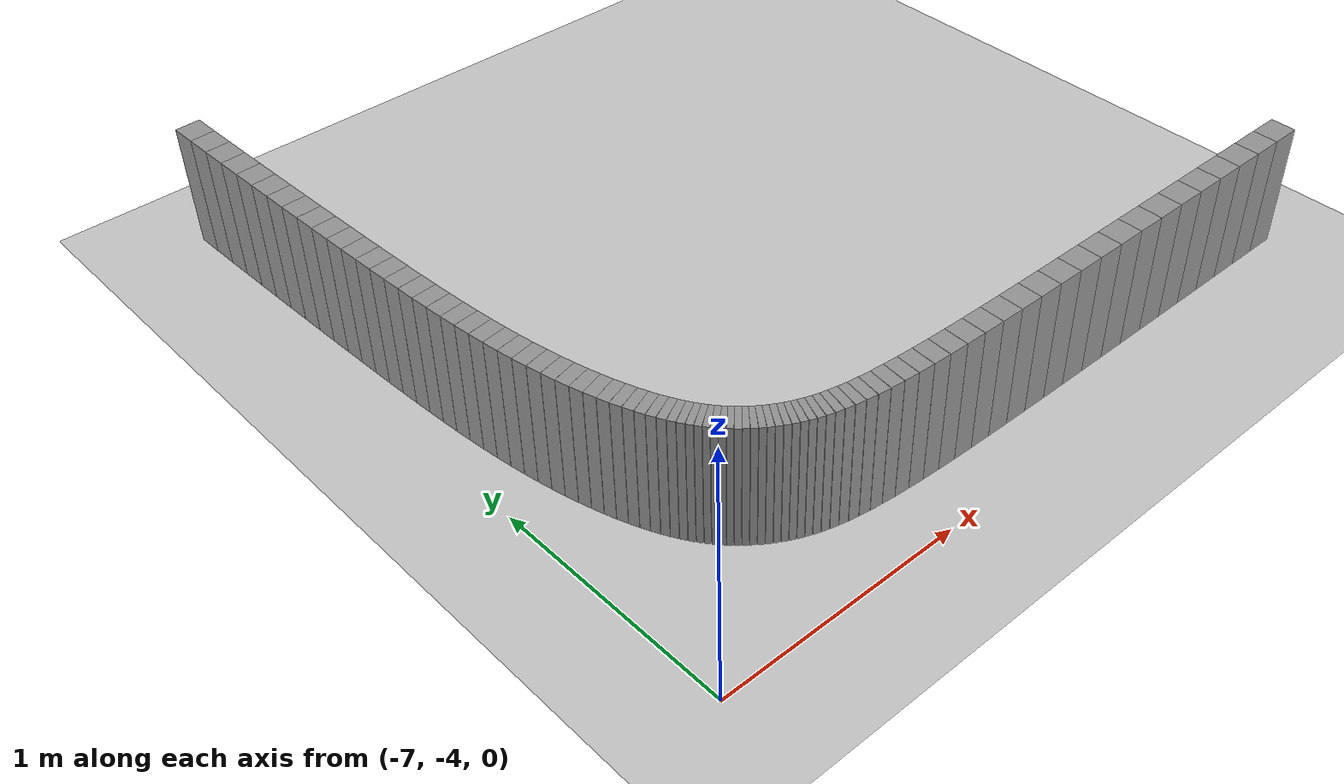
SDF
<sdf version="1.6">
 <world name="default">
  <include><uri>model://ground_plane</uri></include>
  <include><uri>model://sun</uri></include>
  <model name="wall_257_inward">
   <static>true</static>
   <link name="link">
    <collision name="collision">
     <geometry><box><size>0.11985096419137611 0.1 0.5</size></box></geometry>
    </collision>
    <visual name="visual">
     <geometry><box><size>0.11985096419137611 0.1 0.5</size></box></geometry>
     <material>
      <script><uri>file://media/materials/scripts/gazebo.material</uri><name>Gazebo/Gray</name></script>
     </material>
    </visual>
   </link>
   <pose>-3.975832521373053 -3.7499948990752277 0.25 0 0 3.141561475464234</pose>
  </model>
  <model name="wall_258_inward">
   <static>true</static>
   <link name="link">
    <collision name="collision">
     <geometry><box><size>0.1192337507428321 0.1 0.5</size></box></geometry>
    </collision>
    <visual name="visual">
     <geometry><box><size>0.1192337507428321 0.1 0.5</size></box></geometry>
     <material>
      <script><uri>file://media/materials/scripts/gazebo.material</uri><name>Gazebo/Gray</name></script>
     </material>
    </visual>
   </link>
   <pose>-4.095374878715621 -3.749989657864042 0.25 0 0 3.1415360782164345</pose>
  </model>
  <model name="wall_259_inward">
   <static>true</static>
   <link name="link">
    <collision name="collision">
     <geometry><box><size>0.11870285826603268 0.1 0.5</size></box></geometry>
    </collision>
    <visual name="visual">
     <geometry><box><size>0.11870285826603268 0.1 0.5</size></box></geometry>
     <material>
      <script><uri>file://media/materials/scripts/gazebo.material</uri><name>Gazebo/Gray</name></script>
     </material>
    </visual>
   </link>
   <pose>-4.214343182840169 -3.749980473995045 0.25 0 0 3.1414947448770487</pose>
  </model>
  <model name="wall_260_inward">
   <static>true</static>
   <link name="link">
    <collision name="collision">
     <geometry><box><size>0.11817933233260165 0.1 0.5</size></box></geometry>
    </collision>
    <visual name="visual">
     <geometry><box><size>0.11817933233260165 0.1 0.5</size></box></geometry>
     <material>
      <script><uri>file://media/materials/scripts/gazebo.material</uri><name>Gazebo/Gray</name></script>
     </material>
    </visual>
   </link>
   <pose>-4.332784277100143 -3.749965217879076 0.25 0 0 3.141432810175456</pose>
  </model>
  <model name="wall_261_inward">
   <static>true</static>
   <link name="link">
    <collision name="collision">
     <geometry><box><size>0.11757315043329368 0.1 0.5</size></box></geometry>
    </collision>
    <visual name="visual">
     <geometry><box><size>0.11757315043329368 0.1 0.5</size></box></geometry>
     <material>
      <script><uri>file://media/materials/scripts/gazebo.material</uri><name>Gazebo/Gray</name></script>
     </material>
    </visual>
   </link>
   <pose>-4.450660515738427 -3.7499404774729017 0.25 0 0 3.1413324698260894</pose>
  </model>
  <model name="wall_262_inward">
   <static>true</static>
   <link name="link">
    <collision name="collision">
     <geometry><box><size>0.11678989925178221 0.1 0.5</size></box></geometry>
    </collision>
    <visual name="visual">
     <geometry><box><size>0.11678989925178221 0.1 0.5</size></box></geometry>
     <material>
      <script><uri>file://media/materials/scripts/gazebo.material</uri><name>Gazebo/Gray</name></script>
     </material>
    </visual>
   </link>
   <pose>-4.567842033478291 -3.7499007458681493 0.25 0 0 3.1411741877224597</pose>
  </model>
  <model name="wall_263_inward">
   <static>true</static>
   <link name="link">
    <collision name="collision">
     <geometry><box><size>0.11573714084706525 0.1 0.5</size></box></geometry>
    </collision>
    <visual name="visual">
     <geometry><box><size>0.11573714084706525 0.1 0.5</size></box></geometry>
     <material>
      <script><uri>file://media/materials/scripts/gazebo.material</uri><name>Gazebo/Gray</name></script>
     </material>
    </visual>
   </link>
   <pose>-4.684105536010743 -3.749838420074222 0.25 0 0 3.140937902594098</pose>
  </model>
  <model name="wall_264_inward">
   <static>true</static>
   <link name="link">
    <collision name="collision">
     <geometry><box><size>0.11433355742984244 0.1 0.5</size></box></geometry>
    </collision>
    <visual name="visual">
     <geometry><box><size>0.11433355742984244 0.1 0.5</size></box></geometry>
     <material>
      <script><uri>file://media/materials/scripts/gazebo.material</uri><name>Gazebo/Gray</name></script>
     </material>
    </visual>
   </link>
   <pose>-4.799140843504752 -3.7497427105722343 0.25 0 0 3.1405812268180058</pose>
  </model>
  <model name="wall_265_inward">
   <static>true</static>
   <link name="link">
    <collision name="collision">
     <geometry><box><size>0.11251301296791803 0.1 0.5</size></box></geometry>
    </collision>
    <visual name="visual">
     <geometry><box><size>0.11251301296791803 0.1 0.5</size></box></geometry>
     <material>
      <script><uri>file://media/materials/scripts/gazebo.material</uri><name>Gazebo/Gray</name></script>
     </material>
    </visual>
   </link>
   <pose>-4.912564033720715 -3.7495988853982043 0.25 0 0 3.140063848971151</pose>
  </model>
  <model name="wall_266_inward">
   <static>true</static>
   <link name="link">
    <collision name="collision">
     <geometry><box><size>0.11023141690203944 0.1 0.5</size></box></geometry>
    </collision>
    <visual name="visual">
     <geometry><box><size>0.11023141690203944 0.1 0.5</size></box></geometry>
     <material>
      <script><uri>file://media/materials/scripts/gazebo.material</uri><name>Gazebo/Gray</name></script>
     </material>
    </visual>
   </link>
   <pose>-5.023936039316732 -3.7493870676122416 0.25 0 0 3.1393099518823795</pose>
  </model>
  <model name="wall_267_inward">
   <static>true</static>
   <link name="link">
    <collision name="collision">
     <geometry><box><size>0.10746341661228778 0.1 0.5</size></box></geometry>
    </collision>
    <visual name="visual">
     <geometry><box><size>0.10746341661228778 0.1 0.5</size></box></geometry>
     <material>
      <script><uri>file://media/materials/scripts/gazebo.material</uri><name>Gazebo/Gray</name></script>
     </material>
    </visual>
   </link>
   <pose>-5.132783008885932 -3.7490806313715224 0.25 0 0 3.138231063681837</pose>
  </model>
  <model name="wall_268_inward">
   <static>true</static>
   <link name="link">
    <collision name="collision">
     <geometry><box><size>0.10421662167659766 0.1 0.5</size></box></geometry>
    </collision>
    <visual name="visual">
     <geometry><box><size>0.10421662167659766 0.1 0.5</size></box></geometry>
     <material>
      <script><uri>file://media/materials/scripts/gazebo.material</uri><name>Gazebo/Gray</name></script>
     </material>
    </visual>
   </link>
   <pose>-5.238622101673148 -3.7486452487490487 0.25 0 0 3.136703606044576</pose>
  </model>
  <model name="wall_269_inward">
   <static>true</static>
   <link name="link">
    <collision name="collision">
     <geometry><box><size>0.10050407942231163 0.1 0.5</size></box></geometry>
    </collision>
    <visual name="visual">
     <geometry><box><size>0.10050407942231163 0.1 0.5</size></box></geometry>
     <material>
      <script><uri>file://media/materials/scripts/gazebo.material</uri><name>Gazebo/Gray</name></script>
     </material>
    </visual>
   </link>
   <pose>-5.3409805952600085 -3.748038296194944 0.25 0 0 3.1345840536367113</pose>
  </model>
  <model name="wall_270_inward">
   <static>true</static>
   <link name="link">
    <collision name="collision">
     <geometry><box><size>0.09635972329131096 0.1 0.5</size></box></geometry>
    </collision>
    <visual name="visual">
     <geometry><box><size>0.09635972329131096 0.1 0.5</size></box></geometry>
     <material>
      <script><uri>file://media/materials/scripts/gazebo.material</uri><name>Gazebo/Gray</name></script>
     </material>
    </visual>
   </link>
   <pose>-5.439408888072236 -3.7472077870020266 0.25 0 0 3.1316647817739494</pose>
  </model>
  <model name="wall_271_inward">
   <static>true</static>
   <link name="link">
    <collision name="collision">
     <geometry><box><size>0.09183302656771014 0.1 0.5</size></box></geometry>
    </collision>
    <visual name="visual">
     <geometry><box><size>0.09183302656771014 0.1 0.5</size></box></geometry>
     <material>
      <script><uri>file://media/materials/scripts/gazebo.material</uri><name>Gazebo/Gray</name></script>
     </material>
    </visual>
   </link>
   <pose>-5.533498467453442 -3.7460922958120015 0.25 0 0 3.1277153801886217</pose>
  </model>
  <model name="wall_272_inward">
   <static>true</static>
   <link name="link">
    <collision name="collision">
     <geometry><box><size>0.08697319237249161 0.1 0.5</size></box></geometry>
    </collision>
    <visual name="visual">
     <geometry><box><size>0.08697319237249161 0.1 0.5</size></box></geometry>
     <material>
      <script><uri>file://media/materials/scripts/gazebo.material</uri><name>Gazebo/Gray</name></script>
     </material>
    </visual>
   </link>
   <pose>-5.6228891847798055 -3.7446225370279906 0.25 0 0 3.1224457399725645</pose>
  </model>
  <model name="wall_273_inward">
   <static>true</static>
   <link name="link">
    <collision name="collision">
     <geometry><box><size>0.08183619003548818 0.1 0.5</size></box></geometry>
    </collision>
    <visual name="visual">
     <geometry><box><size>0.08183619003548818 0.1 0.5</size></box></geometry>
     <material>
      <script><uri>file://media/materials/scripts/gazebo.material</uri><name>Gazebo/Gray</name></script>
     </material>
    </visual>
   </link>
   <pose>-5.707271999080447 -3.742723268546782 0.25 0 0 3.1155209093581404</pose>
  </model>
  <model name="wall_274_inward">
   <static>true</static>
   <link name="link">
    <collision name="collision">
     <geometry><box><size>0.07648250923630003 0.1 0.5</size></box></geometry>
    </collision>
    <visual name="visual">
     <geometry><box><size>0.07648250923630003 0.1 0.5</size></box></geometry>
     <material>
      <script><uri>file://media/materials/scripts/gazebo.material</uri><name>Gazebo/Gray</name></script>
     </material>
    </visual>
   </link>
   <pose>-5.786393986108401 -3.7403173771629104 0.25 0 0 3.106565559760116</pose>
  </model>
  <model name="wall_275_inward">
   <static>true</static>
   <link name="link">
    <collision name="collision">
     <geometry><box><size>0.07097752288774944 0.1 0.5</size></box></geometry>
    </collision>
    <visual name="visual">
     <geometry><box><size>0.07097752288774944 0.1 0.5</size></box></geometry>
     <material>
      <script><uri>file://media/materials/scripts/gazebo.material</uri><name>Gazebo/Gray</name></script>
     </material>
    </visual>
   </link>
   <pose>-5.860062311705724 -3.7373312709759237 0.25 0 0 3.095169738997599</pose>
  </model>
  <model name="wall_276_inward">
   <static>true</static>
   <link name="link">
    <collision name="collision">
     <geometry><box><size>0.0653900516977593 0.1 0.5</size></box></geometry>
    </collision>
    <visual name="visual">
     <geometry><box><size>0.0653900516977593 0.1 0.5</size></box></geometry>
     <material>
      <script><uri>file://media/materials/scripts/gazebo.material</uri><name>Gazebo/Gray</name></script>
     </material>
    </visual>
   </link>
   <pose>-5.928147722739459 -3.7337021750964796 0.25 0 0 3.0809286204245048</pose>
  </model>
  <model name="wall_277_inward">
   <static>true</static>
   <link name="link">
    <collision name="collision">
     <geometry><box><size>0.05979624184406644 0.1 0.5</size></box></geometry>
    </collision>
    <visual name="visual">
     <geometry><box><size>0.05979624184406644 0.1 0.5</size></box></geometry>
     <material>
      <script><uri>file://media/materials/scripts/gazebo.material</uri><name>Gazebo/Gray</name></script>
     </material>
    </visual>
   </link>
   <pose>-5.990589491067444 -3.7293860456914265 0.25 0 0 3.0634502666800087</pose>
  </model>
  <model name="wall_278_inward">
   <static>true</static>
   <link name="link">
    <collision name="collision">
     <geometry><box><size>0.054287492867526266 0.1 0.5</size></box></geometry>
    </collision>
    <visual name="visual">
     <geometry><box><size>0.054287492867526266 0.1 0.5</size></box></geometry>
     <material>
      <script><uri>file://media/materials/scripts/gazebo.material</uri><name>Gazebo/Gray</name></script>
     </material>
    </visual>
   </link>
   <pose>-6.0474066928933325 -3.7243640363724686 0.25 0 0 3.042398941319446</pose>
  </model>
  <model name="wall_279_inward">
   <static>true</static>
   <link name="link">
    <collision name="collision">
     <geometry><box><size>0.04897055171827991 0.1 0.5</size></box></geometry>
    </collision>
    <visual name="visual">
     <geometry><box><size>0.04897055171827991 0.1 0.5</size></box></geometry>
     <material>
      <script><uri>file://media/materials/scripts/gazebo.material</uri><name>Gazebo/Gray</name></script>
     </material>
    </visual>
   </link>
   <pose>-6.098714174403398 -3.718646682497511 0.25 0 0 3.017556490803941</pose>
  </model>
  <model name="wall_280_inward">
   <static>true</static>
   <link name="link">
    <collision name="collision">
     <geometry><box><size>0.043958492335045264 0.1 0.5</size></box></geometry>
    </collision>
    <visual name="visual">
     <geometry><box><size>0.043958492335045264 0.1 0.5</size></box></geometry>
     <material>
      <script><uri>file://media/materials/scripts/gazebo.material</uri><name>Gazebo/Gray</name></script>
     </material>
    </visual>
   </link>
   <pose>-6.144734699092504 -3.712273321710067 0.25 0 0 2.9888521629420137</pose>
  </model>
  <model name="wall_281_inward">
   <static>true</static>
   <link name="link">
    <collision name="collision">
     <geometry><box><size>0.03936833173654973 0.1 0.5</size></box></geometry>
    </collision>
    <visual name="visual">
     <geometry><box><size>0.03936833173654973 0.1 0.5</size></box></geometry>
     <material>
      <script><uri>file://media/materials/scripts/gazebo.material</uri><name>Gazebo/Gray</name></script>
     </material>
    </visual>
   </link>
   <pose>-6.185805646213538 -3.7053047029852673 0.25 0 0 2.9564013153614255</pose>
  </model>
  <model name="wall_282_inward">
   <static>true</static>
   <link name="link">
    <collision name="collision">
     <geometry><box><size>0.03531460168848373 0.1 0.5</size></box></geometry>
    </collision>
    <visual name="visual">
     <geometry><box><size>0.03531460168848373 0.1 0.5</size></box></geometry>
     <material>
      <script><uri>file://media/materials/scripts/gazebo.material</uri><name>Gazebo/Gray</name></script>
     </material>
    </visual>
   </link>
   <pose>-6.222380835838898 -3.697808477075342 0.25 0 0 2.920527993841649</pose>
  </model>
  <model name="wall_283_inward">
   <static>true</static>
   <link name="link">
    <collision name="collision">
     <geometry><box><size>0.03188550989948741 0.1 0.5</size></box></geometry>
    </collision>
    <visual name="visual">
     <geometry><box><size>0.03188550989948741 0.1 0.5</size></box></geometry>
     <material>
      <script><uri>file://media/materials/scripts/gazebo.material</uri><name>Gazebo/Gray</name></script>
     </material>
    </visual>
   </link>
   <pose>-6.255016058857926 -3.6898408541311056 0.25 0 0 2.8817639448512384</pose>
  </model>
  <model name="wall_284_inward">
   <static>true</static>
   <link name="link">
    <collision name="collision">
     <geometry><box><size>0.029129023338947773 0.1 0.5</size></box></geometry>
    </collision>
    <visual name="visual">
     <geometry><box><size>0.029129023338947773 0.1 0.5</size></box></geometry>
     <material>
      <script><uri>file://media/materials/scripts/gazebo.material</uri><name>Gazebo/Gray</name></script>
     </material>
    </visual>
   </link>
   <pose>-6.284334256169412 -3.6814297326100207 0.25 0 0 2.840796170122841</pose>
  </model>
  <model name="wall_285_inward">
   <static>true</static>
   <link name="link">
    <collision name="collision">
     <geometry><box><size>0.027037952706920405 0.1 0.5</size></box></geometry>
    </collision>
    <visual name="visual">
     <geometry><box><size>0.027037952706920405 0.1 0.5</size></box></geometry>
     <material>
      <script><uri>file://media/materials/scripts/gazebo.material</uri><name>Gazebo/Gray</name></script>
     </material>
    </visual>
   </link>
   <pose>-6.3109754548729935 -3.6725654794993154 0.25 0 0 2.798400548719962</pose>
  </model>
  <model name="wall_286_inward">
   <static>true</static>
   <link name="link">
    <collision name="collision">
     <geometry><box><size>0.02556457982811214 0.1 0.5</size></box></geometry>
    </collision>
    <visual name="visual">
     <geometry><box><size>0.02556457982811214 0.1 0.5</size></box></geometry>
     <material>
      <script><uri>file://media/materials/scripts/gazebo.material</uri><name>Gazebo/Gray</name></script>
     </material>
    </visual>
   </link>
   <pose>-6.335546593118629 -3.663200907942003 0.25 0 0 2.7553260506692454</pose>
  </model>
  <model name="wall_287_inward">
   <static>true</static>
   <link name="link">
    <collision name="collision">
     <geometry><box><size>0.02460469299314515 0.1 0.5</size></box></geometry>
    </collision>
    <visual name="visual">
     <geometry><box><size>0.02460469299314515 0.1 0.5</size></box></geometry>
     <material>
      <script><uri>file://media/materials/scripts/gazebo.material</uri><name>Gazebo/Gray</name></script>
     </material>
    </visual>
   </link>
   <pose>-6.358573077658383 -3.653264673928919 0.25 0 0 2.7122866600093416</pose>
  </model>
  <model name="wall_288_inward">
   <static>true</static>
   <link name="link">
    <collision name="collision">
     <geometry><box><size>0.02402310544051826 0.1 0.5</size></box></geometry>
    </collision>
    <visual name="visual">
     <geometry><box><size>0.02402310544051826 0.1 0.5</size></box></geometry>
     <material>
      <script><uri>file://media/materials/scripts/gazebo.material</uri><name>Gazebo/Gray</name></script>
     </material>
    </visual>
   </link>
   <pose>-6.380458158557799 -3.6426844244108842 0.25 0 0 2.669756456819574</pose>
  </model>
  <model name="wall_289_inward">
   <static>true</static>
   <link name="link">
    <collision name="collision">
     <geometry><box><size>0.02368589950599631 0.1 0.5</size></box></geometry>
    </collision>
    <visual name="visual">
     <geometry><box><size>0.02368589950599631 0.1 0.5</size></box></geometry>
     <material>
      <script><uri>file://media/materials/scripts/gazebo.material</uri><name>Gazebo/Gray</name></script>
     </material>
    </visual>
   </link>
   <pose>-6.401472625670959 -3.6314069192470066 0.25 0 0 2.6280554144560533</pose>
  </model>
  <model name="wall_290_inward">
   <static>true</static>
   <link name="link">
    <collision name="collision">
     <geometry><box><size>0.023469801988124563 0.1 0.5</size></box></geometry>
    </collision>
    <visual name="visual">
     <geometry><box><size>0.023469801988124563 0.1 0.5</size></box></geometry>
     <material>
      <script><uri>file://media/materials/scripts/gazebo.material</uri><name>Gazebo/Gray</name></script>
     </material>
    </visual>
   </link>
   <pose>-6.421765663654026 -3.6194120658560074 0.25 0 0 2.5872699937243673</pose>
  </model>
  <model name="wall_291_inward">
   <static>true</static>
   <link name="link">
    <collision name="collision">
     <geometry><box><size>0.023272072233249043 0.1 0.5</size></box></geometry>
    </collision>
    <visual name="visual">
     <geometry><box><size>0.023272072233249043 0.1 0.5</size></box></geometry>
     <material>
      <script><uri>file://media/materials/scripts/gazebo.material</uri><name>Gazebo/Gray</name></script>
     </material>
    </visual>
   </link>
   <pose>-6.4413846147538 -3.606720343118595 0.25 0 0 2.5473446092276646</pose>
  </model>
  <model name="wall_292_inward">
   <static>true</static>
   <link name="link">
    <collision name="collision">
     <geometry><box><size>0.02303499157915833 0.1 0.5</size></box></geometry>
    </collision>
    <visual name="visual">
     <geometry><box><size>0.02303499157915833 0.1 0.5</size></box></geometry>
     <material>
      <script><uri>file://media/materials/scripts/gazebo.material</uri><name>Gazebo/Gray</name></script>
     </material>
    </visual>
   </link>
   <pose>-6.46030816331419 -3.593386989184484 0.25 0 0 2.5080389439965645</pose>
  </model>
  <model name="wall_293_inward">
   <static>true</static>
   <link name="link">
    <collision name="collision">
     <geometry><box><size>0.02274415354014015 0.1 0.5</size></box></geometry>
    </collision>
    <visual name="visual">
     <geometry><box><size>0.02274415354014015 0.1 0.5</size></box></geometry>
     <material>
      <script><uri>file://media/materials/scripts/gazebo.material</uri><name>Gazebo/Gray</name></script>
     </material>
    </visual>
   </link>
   <pose>-6.478486595954779 -3.5794845183091137 0.25 0 0 2.469114386438585</pose>
  </model>
  <model name="wall_294_inward">
   <static>true</static>
   <link name="link">
    <collision name="collision">
     <geometry><box><size>0.02240563150620921 0.1 0.5</size></box></geometry>
    </collision>
    <visual name="visual">
     <geometry><box><size>0.02240563150620921 0.1 0.5</size></box></geometry>
     <material>
      <script><uri>file://media/materials/scripts/gazebo.material</uri><name>Gazebo/Gray</name></script>
     </material>
    </visual>
   </link>
   <pose>-6.495868863713278 -3.565086937791947 0.25 0 0 2.4302691521389246</pose>
  </model>
  <model name="wall_295_inward">
   <static>true</static>
   <link name="link">
    <collision name="collision">
     <geometry><box><size>0.022070769463099146 0.1 0.5</size></box></geometry>
    </collision>
    <visual name="visual">
     <geometry><box><size>0.022070769463099146 0.1 0.5</size></box></geometry>
     <material>
      <script><uri>file://media/materials/scripts/gazebo.material</uri><name>Gazebo/Gray</name></script>
     </material>
    </visual>
   </link>
   <pose>-6.512426898283839 -3.5502484442728397 0.25 0 0 2.3912537385576567</pose>
  </model>
  <model name="wall_296_inward">
   <static>true</static>
   <link name="link">
    <collision name="collision">
     <geometry><box><size>0.02181500069988589 0.1 0.5</size></box></geometry>
    </collision>
    <visual name="visual">
     <geometry><box><size>0.02181500069988589 0.1 0.5</size></box></geometry>
     <material>
      <script><uri>file://media/materials/scripts/gazebo.material</uri><name>Gazebo/Gray</name></script>
     </material>
    </visual>
   </link>
   <pose>-6.528178368225654 -3.5349777212925866 0.25 0 0 2.3518971033459226</pose>
  </model>
  <model name="wall_297_inward">
   <static>true</static>
   <link name="link">
    <collision name="collision">
     <geometry><box><size>0.02174351973835134 0.1 0.5</size></box></geometry>
    </collision>
    <visual name="visual">
     <geometry><box><size>0.02174351973835134 0.1 0.5</size></box></geometry>
     <material>
      <script><uri>file://media/materials/scripts/gazebo.material</uri><name>Gazebo/Gray</name></script>
     </material>
    </visual>
   </link>
   <pose>-6.54319951762276 -3.519213395230791 0.25 0 0 2.3121550327969373</pose>
  </model>
  <model name="wall_298_inward">
   <static>true</static>
   <link name="link">
    <collision name="collision">
     <geometry><box><size>0.021926463865557348 0.1 0.5</size></box></geometry>
    </collision>
    <visual name="visual">
     <geometry><box><size>0.021926463865557348 0.1 0.5</size></box></geometry>
     <material>
      <script><uri>file://media/materials/scripts/gazebo.material</uri><name>Gazebo/Gray</name></script>
     </material>
    </visual>
   </link>
   <pose>-6.557615254860033 -3.50281940974062 0.25 0 0 2.2721604176950017</pose>
  </model>
  <model name="wall_299_inward">
   <static>true</static>
   <link name="link">
    <collision name="collision">
     <geometry><box><size>0.022455914085575727 0.1 0.5</size></box></geometry>
    </collision>
    <visual name="visual">
     <geometry><box><size>0.022455914085575727 0.1 0.5</size></box></geometry>
     <material>
      <script><uri>file://media/materials/scripts/gazebo.material</uri><name>Gazebo/Gray</name></script>
     </material>
    </visual>
   </link>
   <pose>-6.57158447096393 -3.4855824796750747 0.25 0 0 2.232040105215239</pose>
  </model>
  <model name="wall_300_inward">
   <static>true</static>
   <link name="link">
    <collision name="collision">
     <geometry><box><size>0.023399560340396443 0.1 0.5</size></box></geometry>
    </collision>
    <visual name="visual">
     <geometry><box><size>0.023399560340396443 0.1 0.5</size></box></geometry>
     <material>
      <script><uri>file://media/materials/scripts/gazebo.material</uri><name>Gazebo/Gray</name></script>
     </material>
    </visual>
   </link>
   <pose>-6.585290871125759 -3.467208388458634 0.25 0 0 2.192197949727474</pose>
  </model>
  <model name="wall_301_inward">
   <static>true</static>
   <link name="link">
    <collision name="collision">
     <geometry><box><size>0.024752969674902144 0.1 0.5</size></box></geometry>
    </collision>
    <visual name="visual">
     <geometry><box><size>0.024752969674902144 0.1 0.5</size></box></geometry>
     <material>
      <script><uri>file://media/materials/scripts/gazebo.material</uri><name>Gazebo/Gray</name></script>
     </material>
    </visual>
   </link>
   <pose>-6.598907016151414 -3.447357846117823 0.25 0 0 2.1529433735769774</pose>
  </model>
  <model name="wall_302_inward">
   <static>true</static>
   <link name="link">
    <collision name="collision">
     <geometry><box><size>0.02651538896938302 0.1 0.5</size></box></geometry>
    </collision>
    <visual name="visual">
     <geometry><box><size>0.02651538896938302 0.1 0.5</size></box></geometry>
     <material>
      <script><uri>file://media/materials/scripts/gazebo.material</uri><name>Gazebo/Gray</name></script>
     </material>
    </visual>
   </link>
   <pose>-6.612571577272867 -3.4256749030714424 0.25 0 0 2.114624559244304</pose>
  </model>
  <model name="wall_303_inward">
   <static>true</static>
   <link name="link">
    <collision name="collision">
     <geometry><box><size>0.02865211571768054 0.1 0.5</size></box></geometry>
    </collision>
    <visual name="visual">
     <geometry><box><size>0.02865211571768054 0.1 0.5</size></box></geometry>
     <material>
      <script><uri>file://media/materials/scripts/gazebo.material</uri><name>Gazebo/Gray</name></script>
     </material>
    </visual>
   </link>
   <pose>-6.626384244524119 -3.401804158050286 0.25 0 0 2.0775418357616715</pose>
  </model>
  <model name="wall_304_inward">
   <static>true</static>
   <link name="link">
    <collision name="collision">
     <geometry><box><size>0.031099895316811586 0.1 0.5</size></box></geometry>
    </collision>
    <visual name="visual">
     <geometry><box><size>0.031099895316811586 0.1 0.5</size></box></geometry>
     <material>
      <script><uri>file://media/materials/scripts/gazebo.material</uri><name>Gazebo/Gray</name></script>
     </material>
    </visual>
   </link>
   <pose>-6.640395451576756 -3.375422734005471 0.25 0 0 2.041945071608974</pose>
  </model>
  <model name="wall_305_inward">
   <static>true</static>
   <link name="link">
    <collision name="collision">
     <geometry><box><size>0.03377151724089265 0.1 0.5</size></box></geometry>
    </collision>
    <visual name="visual">
     <geometry><box><size>0.03377151724089265 0.1 0.5</size></box></geometry>
     <material>
      <script><uri>file://media/materials/scripts/gazebo.material</uri><name>Gazebo/Gray</name></script>
     </material>
    </visual>
   </link>
   <pose>-6.654602738346004 -3.346269262983576 0.25 0 0 2.007963726076283</pose>
  </model>
  <model name="wall_306_inward">
   <static>true</static>
   <link name="link">
    <collision name="collision">
     <geometry><box><size>0.03659138478162874 0.1 0.5</size></box></geometry>
    </collision>
    <visual name="visual">
     <geometry><box><size>0.03659138478162874 0.1 0.5</size></box></geometry>
     <material>
      <script><uri>file://media/materials/scripts/gazebo.material</uri><name>Gazebo/Gray</name></script>
     </material>
    </visual>
   </link>
   <pose>-6.668957662719433 -3.3141546630511303 0.25 0 0 1.9756221479035763</pose>
  </model>
  <model name="wall_307_inward">
   <static>true</static>
   <link name="link">
    <collision name="collision">
     <geometry><box><size>0.03949013153308784 0.1 0.5</size></box></geometry>
    </collision>
    <visual name="visual">
     <geometry><box><size>0.03949013153308784 0.1 0.5</size></box></geometry>
     <material>
      <script><uri>file://media/materials/scripts/gazebo.material</uri><name>Gazebo/Gray</name></script>
     </material>
    </visual>
   </link>
   <pose>-6.68337919385246 -3.2789583877615884 0.25 0 0 1.9449005447618868</pose>
  </model>
  <model name="wall_308_inward">
   <static>true</static>
   <link name="link">
    <collision name="collision">
     <geometry><box><size>0.042397547751598465 0.1 0.5</size></box></geometry>
    </collision>
    <visual name="visual">
     <geometry><box><size>0.042397547751598465 0.1 0.5</size></box></geometry>
     <material>
      <script><uri>file://media/materials/scripts/gazebo.material</uri><name>Gazebo/Gray</name></script>
     </material>
    </visual>
   </link>
   <pose>-6.697762970981934 -3.2406289085682762 0.25 0 0 1.9157365825863253</pose>
  </model>
  <model name="wall_309_inward">
   <static>true</static>
   <link name="link">
    <collision name="collision">
     <geometry><box><size>0.0452533950816235 0.1 0.5</size></box></geometry>
    </collision>
    <visual name="visual">
     <geometry><box><size>0.0452533950816235 0.1 0.5</size></box></geometry>
     <material>
      <script><uri>file://media/materials/scripts/gazebo.material</uri><name>Gazebo/Gray</name></script>
     </material>
    </visual>
   </link>
   <pose>-6.711989363651538 -3.1991811873479783 0.25 0 0 1.8880332443841017</pose>
  </model>
  <model name="wall_310_inward">
   <static>true</static>
   <link name="link">
    <collision name="collision">
     <geometry><box><size>0.048007356187770515 0.1 0.5</size></box></geometry>
    </collision>
    <visual name="visual">
     <geometry><box><size>0.048007356187770515 0.1 0.5</size></box></geometry>
     <material>
      <script><uri>file://media/materials/scripts/gazebo.material</uri><name>Gazebo/Gray</name></script>
     </material>
    </visual>
   </link>
   <pose>-6.725932125638998 -3.154688328098007 0.25 0 0 1.861693226019616</pose>
  </model>
  <model name="wall_311_inward">
   <static>true</static>
   <link name="link">
    <collision name="collision">
     <geometry><box><size>0.05062138962612358 0.1 0.5</size></box></geometry>
    </collision>
    <visual name="visual">
     <geometry><box><size>0.05062138962612358 0.1 0.5</size></box></geometry>
     <material>
      <script><uri>file://media/materials/scripts/gazebo.material</uri><name>Gazebo/Gray</name></script>
     </material>
    </visual>
   </link>
   <pose>-6.739465839262949 -3.1072714113689766 0.25 0 0 1.8366182804510596</pose>
  </model>
  <model name="wall_312_inward">
   <static>true</static>
   <link name="link">
    <collision name="collision">
     <geometry><box><size>0.053075590286640835 0.1 0.5</size></box></geometry>
    </collision>
    <visual name="visual">
     <geometry><box><size>0.053075590286640835 0.1 0.5</size></box></geometry>
     <material>
      <script><uri>file://media/materials/scripts/gazebo.material</uri><name>Gazebo/Gray</name></script>
     </material>
    </visual>
   </link>
   <pose>-6.752473511991987 -3.0570849214518727 0.25 0 0 1.812751541773242</pose>
  </model>
  <model name="wall_313_inward">
   <static>true</static>
   <link name="link">
    <collision name="collision">
     <geometry><box><size>0.05535239133935495 0.1 0.5</size></box></geometry>
    </collision>
    <visual name="visual">
     <geometry><box><size>0.05535239133935495 0.1 0.5</size></box></geometry>
     <material>
      <script><uri>file://media/materials/scripts/gazebo.material</uri><name>Gazebo/Gray</name></script>
     </material>
    </visual>
   </link>
   <pose>-6.764851888278203 -3.0043065693910305 0.25 0 0 1.790060307133186</pose>
  </model>
  <model name="wall_314_inward">
   <static>true</static>
   <link name="link">
    <collision name="collision">
     <geometry><box><size>0.057454523719254025 0.1 0.5</size></box></geometry>
    </collision>
    <visual name="visual">
     <geometry><box><size>0.057454523719254025 0.1 0.5</size></box></geometry>
     <material>
      <script><uri>file://media/materials/scripts/gazebo.material</uri><name>Gazebo/Gray</name></script>
     </material>
    </visual>
   </link>
   <pose>-6.776515410310582 -2.949125557991864 0.25 0 0 1.7685382886619614</pose>
  </model>
  <model name="wall_315_inward">
   <static>true</static>
   <link name="link">
    <collision name="collision">
     <geometry><box><size>0.059394721181059956 0.1 0.5</size></box></geometry>
    </collision>
    <visual name="visual">
     <geometry><box><size>0.059394721181059956 0.1 0.5</size></box></geometry>
     <material>
      <script><uri>file://media/materials/scripts/gazebo.material</uri><name>Gazebo/Gray</name></script>
     </material>
    </visual>
   </link>
   <pose>-6.787400663771618 -2.8917269881520404 0.25 0 0 1.7482269118776288</pose>
  </model>
  <model name="wall_316_inward">
   <static>true</static>
   <link name="link">
    <collision name="collision">
     <geometry><box><size>0.061194646355837205 0.1 0.5</size></box></geometry>
    </collision>
    <visual name="visual">
     <geometry><box><size>0.061194646355837205 0.1 0.5</size></box></geometry>
     <material>
      <script><uri>file://media/materials/scripts/gazebo.material</uri><name>Gazebo/Gray</name></script>
     </material>
    </visual>
   </link>
   <pose>-6.797468383009584 -2.832281546471566 0.25 0 0 1.7291873551029395</pose>
  </model>
  <model name="wall_317_inward">
   <static>true</static>
   <link name="link">
    <collision name="collision">
     <geometry><box><size>0.06288622508012294 0.1 0.5</size></box></geometry>
    </collision>
    <visual name="visual">
     <geometry><box><size>0.06288622508012294 0.1 0.5</size></box></geometry>
     <material>
      <script><uri>file://media/materials/scripts/gazebo.material</uri><name>Gazebo/Gray</name></script>
     </material>
    </visual>
   </link>
   <pose>-6.80670428620067 -2.7709348837335233 0.25 0 0 1.7115071398111161</pose>
  </model>
  <model name="wall_318_inward">
   <static>true</static>
   <link name="link">
    <collision name="collision">
     <geometry><box><size>0.06450292284774523 0.1 0.5</size></box></geometry>
    </collision>
    <visual name="visual">
     <geometry><box><size>0.06450292284774523 0.1 0.5</size></box></geometry>
     <material>
      <script><uri>file://media/materials/scripts/gazebo.material</uri><name>Gazebo/Gray</name></script>
     </material>
    </visual>
   </link>
   <pose>-6.815118538008816 -2.707800644777513 0.25 0 0 1.6952810033448211</pose>
  </model>
  <model name="wall_319_inward">
   <static>true</static>
   <link name="link">
    <collision name="collision">
     <geometry><box><size>0.06609359197453117 0.1 0.5</size></box></geometry>
    </collision>
    <visual name="visual">
     <geometry><box><size>0.06609359197453117 0.1 0.5</size></box></geometry>
     <material>
      <script><uri>file://media/materials/scripts/gazebo.material</uri><name>Gazebo/Gray</name></script>
     </material>
    </visual>
   </link>
   <pose>-6.8227442332247765 -2.642950961975595 0.25 0 0 1.6805960841219902</pose>
  </model>
  <model name="wall_320_inward">
   <static>true</static>
   <link name="link">
    <collision name="collision">
     <geometry><box><size>0.06770102063033241 0.1 0.5</size></box></geometry>
    </collision>
    <visual name="visual">
     <geometry><box><size>0.06770102063033241 0.1 0.5</size></box></geometry>
     <material>
      <script><uri>file://media/materials/scripts/gazebo.material</uri><name>Gazebo/Gray</name></script>
     </material>
    </visual>
   </link>
   <pose>-6.829635347403757 -2.576410962086942 0.25 0 0 1.6675445645124463</pose>
  </model>
  <model name="wall_321_inward">
   <static>true</static>
   <link name="link">
    <collision name="collision">
     <geometry><box><size>0.06936121319758351 0.1 0.5</size></box></geometry>
    </collision>
    <visual name="visual">
     <geometry><box><size>0.06936121319758351 0.1 0.5</size></box></geometry>
     <material>
      <script><uri>file://media/materials/scripts/gazebo.material</uri><name>Gazebo/Gray</name></script>
     </material>
    </visual>
   </link>
   <pose>-6.835862774142868 -2.508164485845719 0.25 0 0 1.6561798643656054</pose>
  </model>
  <model name="wall_322_inward">
   <static>true</static>
   <link name="link">
    <collision name="collision">
     <geometry><box><size>0.07110499654609802 0.1 0.5</size></box></geometry>
    </collision>
    <visual name="visual">
     <geometry><box><size>0.07110499654609802 0.1 0.5</size></box></geometry>
     <material>
      <script><uri>file://media/materials/scripts/gazebo.material</uri><name>Gazebo/Gray</name></script>
     </material>
    </visual>
   </link>
   <pose>-6.841509715771184 -2.4381595868894936 0.25 0 0 1.6465141259551472</pose>
  </model>
  <model name="wall_323_inward">
   <static>true</static>
   <link name="link">
    <collision name="collision">
     <geometry><box><size>0.07295204468787846 0.1 0.5</size></box></geometry>
    </collision>
    <visual name="visual">
     <geometry><box><size>0.07295204468787846 0.1 0.5</size></box></geometry>
     <material>
      <script><uri>file://media/materials/scripts/gazebo.material</uri><name>Gazebo/Gray</name></script>
     </material>
    </visual>
   </link>
   <pose>-6.846666730907 -2.3663164963197705 0.25 0 0 1.638498770362441</pose>
  </model>
  <model name="wall_324_inward">
   <static>true</static>
   <link name="link">
    <collision name="collision">
     <geometry><box><size>0.0749155948903677 0.1 0.5</size></box></geometry>
    </collision>
    <visual name="visual">
     <geometry><box><size>0.0749155948903677 0.1 0.5</size></box></geometry>
     <material>
      <script><uri>file://media/materials/scripts/gazebo.material</uri><name>Gazebo/Gray</name></script>
     </material>
    </visual>
   </link>
   <pose>-6.851426601073319 -2.2925364436688653 0.25 0 0 1.6320298670476208</pose>
  </model>
  <model name="wall_325_inward">
   <static>true</static>
   <link name="link">
    <collision name="collision">
     <geometry><box><size>0.07699960287317603 0.1 0.5</size></box></geometry>
    </collision>
    <visual name="visual">
     <geometry><box><size>0.07699960287317603 0.1 0.5</size></box></geometry>
     <material>
      <script><uri>file://media/materials/scripts/gazebo.material</uri><name>Gazebo/Gray</name></script>
     </material>
    </visual>
   </link>
   <pose>-6.8558795495784635 -2.216709727794337 0.25 0 0 1.6269484073475293</pose>
  </model>
  <model name="wall_326_inward">
   <static>true</static>
   <link name="link">
    <collision name="collision">
     <geometry><box><size>0.0791998307108364 0.1 0.5</size></box></geometry>
    </collision>
    <visual name="visual">
     <geometry><box><size>0.0791998307108364 0.1 0.5</size></box></geometry>
     <material>
      <script><uri>file://media/materials/scripts/gazebo.material</uri><name>Gazebo/Gray</name></script>
     </material>
    </visual>
   </link>
   <pose>-6.860108490709928 -2.138724738021353 0.25 0 0 1.6230483200318329</pose>
  </model>
  <model name="wall_327_inward">
   <static>true</static>
   <link name="link">
    <collision name="collision">
     <geometry><box><size>0.08150105344920765 0.1 0.5</size></box></geometry>
    </collision>
    <visual name="visual">
     <geometry><box><size>0.08150105344920765 0.1 0.5</size></box></geometry>
     <material>
      <script><uri>file://media/materials/scripts/gazebo.material</uri><name>Gazebo/Gray</name></script>
     </material>
    </visual>
   </link>
   <pose>-6.864184979791254 -2.0584778581258405 0.25 0 0 1.6200980160476326</pose>
  </model>
  <model name="wall_328_inward">
   <static>true</static>
   <link name="link">
    <collision name="collision">
     <geometry><box><size>0.08388764180895182 0.1 0.5</size></box></geometry>
    </collision>
    <visual name="visual">
     <geometry><box><size>0.08388764180895182 0.1 0.5</size></box></geometry>
     <material>
      <script><uri>file://media/materials/scripts/gazebo.material</uri><name>Gazebo/Gray</name></script>
     </material>
    </visual>
   </link>
   <pose>-6.8681660290979725 -1.9758794457798023 0.25 0 0 1.6178478674398722</pose>
  </model>
  <model name="wall_329_inward">
   <static>true</static>
   <link name="link">
    <collision name="collision">
     <geometry><box><size>0.08634035944026225 0.1 0.5</size></box></geometry>
    </collision>
    <visual name="visual">
     <geometry><box><size>0.08634035944026225 0.1 0.5</size></box></geometry>
     <material>
      <script><uri>file://media/materials/scripts/gazebo.material</uri><name>Gazebo/Gray</name></script>
     </material>
    </visual>
   </link>
   <pose>-6.872092788910357 -1.8908561080398738 0.25 0 0 1.6160737453523977</pose>
  </model>
  <model name="wall_330_inward">
   <static>true</static>
   <link name="link">
    <collision name="collision">
     <geometry><box><size>0.08882835684959303 0.1 0.5</size></box></geometry>
    </collision>
    <visual name="visual">
     <geometry><box><size>0.08882835684959303 0.1 0.5</size></box></geometry>
     <material>
      <script><uri>file://media/materials/scripts/gazebo.material</uri><name>Gazebo/Gray</name></script>
     </material>
    </visual>
   </link>
   <pose>-6.875990597519634 -1.803358550463587 0.25 0 0 1.6145765623747552</pose>
  </model>
  <model name="wall_331_inward">
   <static>true</static>
   <link name="link">
    <collision name="collision">
     <geometry><box><size>0.09131938386284039 0.1 0.5</size></box></geometry>
    </collision>
    <visual name="visual">
     <geometry><box><size>0.09131938386284039 0.1 0.5</size></box></geometry>
     <material>
      <script><uri>file://media/materials/scripts/gazebo.material</uri><name>Gazebo/Gray</name></script>
     </material>
    </visual>
   </link>
   <pose>-6.87986928153955 -1.7133682509850519 0.25 0 0 1.613184292380321</pose>
  </model>
  <model name="wall_332_inward">
   <static>true</static>
   <link name="link">
    <collision name="collision"><geometry><box><size>0.093781958687709 0.1 0.5</size></box></geometry></collision>
    <visual name="visual">
     <geometry><box><size>0.093781958687709 0.1 0.5</size></box></geometry>
     <material>
      <script><uri>file://media/materials/scripts/gazebo.material</uri><name>Gazebo/Gray</name></script>
     </material>
    </visual>
   </link>
   <pose>-6.883725165352916 -1.6208979602555886 0.25 0 0 1.6117760567539825</pose>
  </model>
  <model name="wall_333_inward">
   <static>true</static>
   <link name="link">
    <collision name="collision">
     <geometry><box><size>0.09617974136858691 0.1 0.5</size></box></geometry>
    </collision>
    <visual name="visual">
     <geometry><box><size>0.09617974136858691 0.1 0.5</size></box></geometry>
     <material>
      <script><uri>file://media/materials/scripts/gazebo.material</uri><name>Gazebo/Gray</name></script>
     </material>
    </visual>
   </link>
   <pose>-6.887544401710574 -1.5259939548193753 0.25 0 0 1.6102783985121263</pose>
  </model>
  <model name="wall_334_inward">
   <static>true</static>
   <link name="link">
    <collision name="collision">
     <geometry><box><size>0.09847396816851323 0.1 0.5</size></box></geometry>
    </collision>
    <visual name="visual">
     <geometry><box><size>0.09847396816851323 0.1 0.5</size></box></geometry>
     <material>
      <script><uri>file://media/materials/scripts/gazebo.material</uri><name>Gazebo/Gray</name></script>
     </material>
    </visual>
   </link>
   <pose>-6.891305656262409 -1.4287398376917375 0.25 0 0 1.6086439930922007</pose>
  </model>
  <model name="wall_335_inward">
   <static>true</static>
   <link name="link">
    <collision name="collision">
     <geometry><box><size>0.10062961961296878 0.1 0.5</size></box></geometry>
    </collision>
    <visual name="visual">
     <geometry><box><size>0.10062961961296878 0.1 0.5</size></box></geometry>
     <material>
      <script><uri>file://media/materials/scripts/gazebo.material</uri><name>Gazebo/Gray</name></script>
     </material>
    </visual>
   </link>
   <pose>-6.894982619744013 -1.3292560114702963 0.25 0 0 1.6068552238556413</pose>
  </model>
  <model name="wall_336_inward">
   <static>true</static>
   <link name="link">
    <collision name="collision">
     <geometry><box><size>0.10262380788623092 0.1 0.5</size></box></geometry>
    </collision>
    <visual name="visual">
     <geometry><box><size>0.10262380788623092 0.1 0.5</size></box></geometry>
     <material>
      <script><uri>file://media/materials/scripts/gazebo.material</uri><name>Gazebo/Gray</name></script>
     </material>
    </visual>
   </link>
   <pose>-6.898547237878954 -1.2276918800239813 0.25 0 0 1.6049220256671177</pose>
  </model>
  <model name="wall_337_inward">
   <static>true</static>
   <link name="link">
    <collision name="collision">
     <geometry><box><size>0.10443181248461894 0.1 0.5</size></box></geometry>
    </collision>
    <visual name="visual">
     <geometry><box><size>0.10443181248461894 0.1 0.5</size></box></geometry>
     <material>
      <script><uri>file://media/materials/scripts/gazebo.material</uri><name>Gazebo/Gray</name></script>
     </material>
    </visual>
   </link>
   <pose>-6.901973529172327 -1.124220835958743 0.25 0 0 1.602891226202568</pose>
  </model>
  <model name="wall_338_inward">
   <static>true</static>
   <link name="link">
    <collision name="collision">
     <geometry><box><size>0.10603163997176059 0.1 0.5</size></box></geometry>
    </collision>
    <visual name="visual">
     <geometry><box><size>0.10603163997176059 0.1 0.5</size></box></geometry>
     <material>
      <script><uri>file://media/materials/scripts/gazebo.material</uri><name>Gazebo/Gray</name></script>
     </material>
    </visual>
   </link>
   <pose>-6.905240467330426 -1.0190398898881265 0.25 0 0 1.6008175669827294</pose>
  </model>
 </world>
</sdf>
